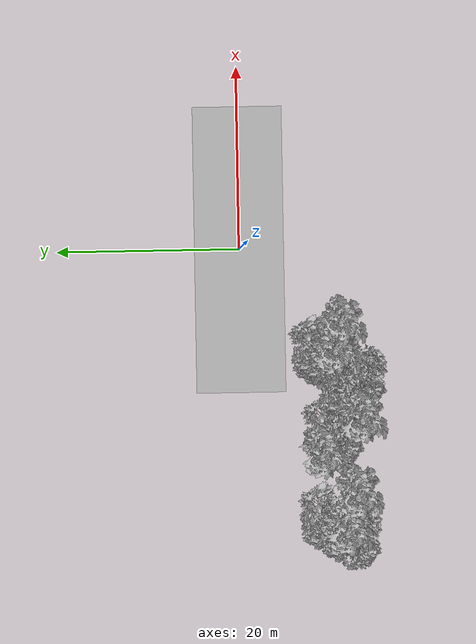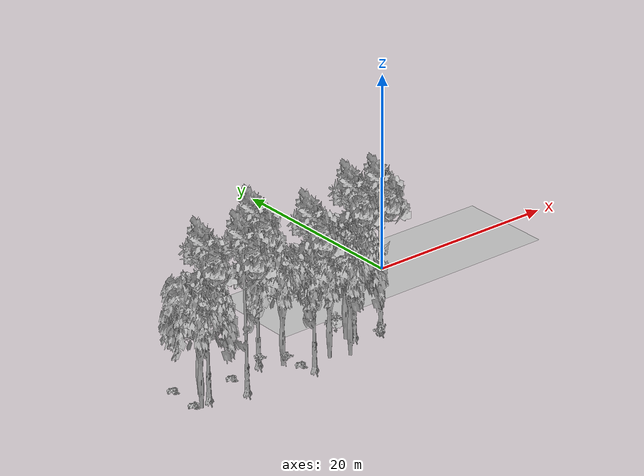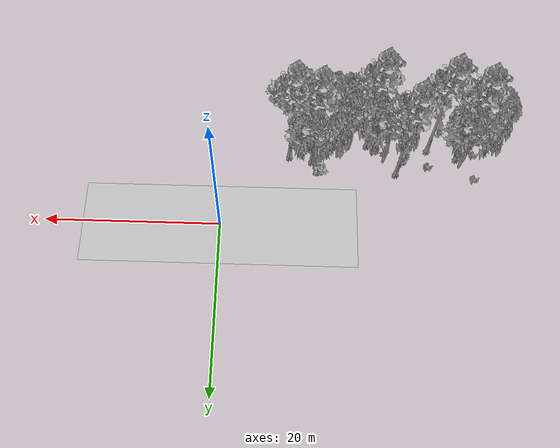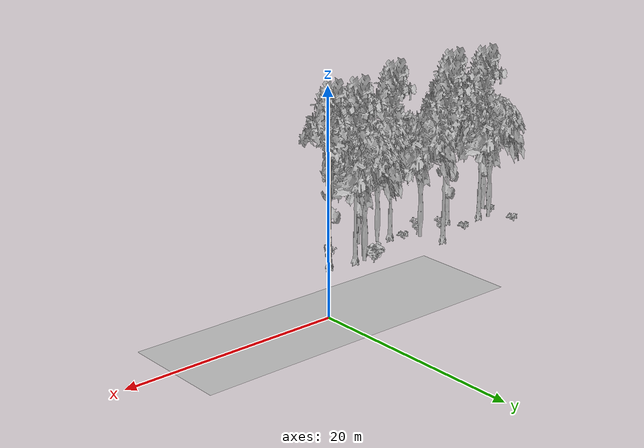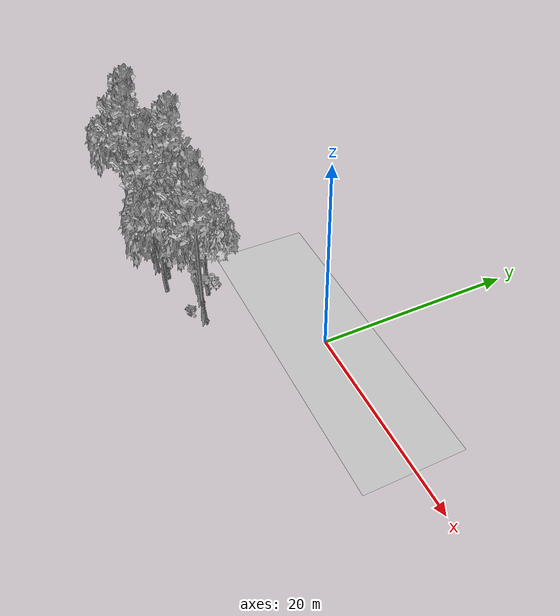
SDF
<sdf version="1.7">
 <world name="default">
  <model name="ground_plane">
   <static>1</static>
   <link name="link">
    <collision name="collision">
     <geometry><plane><normal>0 0 1</normal><size>100 100</size></plane></geometry>
     <surface><contact><ode><min_depth>0.01</min_depth><max_vel>0</max_vel></ode></contact></surface>
    </collision>
    <visual name="grass">
     <cast_shadows>0</cast_shadows>
     <geometry>
      <mesh>
       <scale>0.5814285714285714 0.18142857142857144 0.1</scale>
       <uri>file://grass_plane/meshes/grass_plane.dae</uri>
      </mesh>
     </geometry>
    </visual>
   </link>
  </model>
  <model name="Tree 18">
   <static>1</static>
   <pose>-20.40445769906592 -7.195301305459899 0 1.57079 -0 0</pose>
   <link name="link">
    <collision name="collision">
     <geometry><mesh><scale>3.5 5 3.5</scale><uri>model://tree_9/meshes/tree_9.obj</uri></mesh></geometry>
    </collision>
    <visual name="visual">
     <geometry><mesh><scale>3.5 5 3.5</scale><uri>model://tree_9/meshes/tree_9.obj</uri></mesh></geometry>
    </visual>
   </link>
  </model>
  <model name="Tree 27">
   <static>1</static>
   <pose>-10.889017046997004 -7.6712692974383065 0 1.57079 -0 0</pose>
   <link name="link">
    <collision name="collision">
     <geometry><mesh><scale>3.5 5 3.5</scale><uri>model://tree_2/meshes/tree_2.obj</uri></mesh></geometry>
    </collision>
    <visual name="visual">
     <geometry><mesh><scale>3.5 5 3.5</scale><uri>model://tree_2/meshes/tree_2.obj</uri></mesh></geometry>
    </visual>
   </link>
  </model>
  <model name="Tree 64">
   <static>1</static>
   <pose>-27.997522878768937 -8.398625686146245 0 1.57079 -0 0</pose>
   <link name="link">
    <collision name="collision">
     <geometry><mesh><scale>3.5 5 3.5</scale><uri>model://tree_2/meshes/tree_2.obj</uri></mesh></geometry>
    </collision>
    <visual name="visual">
     <geometry><mesh><scale>3.5 5 3.5</scale><uri>model://tree_2/meshes/tree_2.obj</uri></mesh></geometry>
    </visual>
   </link>
  </model>
  <model name="Tree 67">
   <static>1</static>
   <pose>-24.26446829051003 -10.529204269525131 0 1.57079 -0 0</pose>
   <link name="link">
    <collision name="collision">
     <geometry><mesh><scale>3.5 5 3.5</scale><uri>model://tree_9/meshes/tree_9.obj</uri></mesh></geometry>
    </collision>
    <visual name="visual">
     <geometry><mesh><scale>3.5 5 3.5</scale><uri>model://tree_9/meshes/tree_9.obj</uri></mesh></geometry>
    </visual>
   </link>
  </model>
  <model name="Tree 87">
   <static>1</static>
   <pose>-14.94647857060501 -10.447118888923555 0 1.57079 -0 0</pose>
   <link name="link">
    <collision name="collision">
     <geometry><mesh><scale>3.5 5 3.5</scale><uri>model://tree_2/meshes/tree_2.obj</uri></mesh></geometry>
    </collision>
    <visual name="visual">
     <geometry><mesh><scale>3.5 5 3.5</scale><uri>model://tree_2/meshes/tree_2.obj</uri></mesh></geometry>
    </visual>
   </link>
  </model>
  <model name="Tree 138">
   <static>1</static>
   <pose>-29.275993789265485 -10.40914517177292 0 1.57079 -0 0</pose>
   <link name="link">
    <collision name="collision">
     <geometry><mesh><scale>3.5 5 3.5</scale><uri>model://tree_2/meshes/tree_2.obj</uri></mesh></geometry>
    </collision>
    <visual name="visual">
     <geometry><mesh><scale>3.5 5 3.5</scale><uri>model://tree_2/meshes/tree_2.obj</uri></mesh></geometry>
    </visual>
   </link>
  </model>
  <model name="Tree 147">
   <static>1</static>
   <pose>-27.676338895596533 -9.46270204950148 0 1.57079 -0 0</pose>
   <link name="link">
    <collision name="collision">
     <geometry><mesh><scale>3.5 5 3.5</scale><uri>model://tree_9/meshes/tree_9.obj</uri></mesh></geometry>
    </collision>
    <visual name="visual">
     <geometry><mesh><scale>3.5 5 3.5</scale><uri>model://tree_9/meshes/tree_9.obj</uri></mesh></geometry>
    </visual>
   </link>
  </model>
  <model name="Tree 180">
   <static>1</static>
   <pose>-7.8509546493767886 -9.181474716428522 0 1.57079 -0 0</pose>
   <link name="link">
    <collision name="collision">
     <geometry><mesh><scale>3.5 5 3.5</scale><uri>model://tree_9/meshes/tree_9.obj</uri></mesh></geometry>
    </collision>
    <visual name="visual">
     <geometry><mesh><scale>3.5 5 3.5</scale><uri>model://tree_9/meshes/tree_9.obj</uri></mesh></geometry>
    </visual>
   </link>
  </model>
  <model name="Tree 185">
   <static>1</static>
   <pose>-19.030774615669706 -8.836474792375165 0 1.57079 -0 0</pose>
   <link name="link">
    <collision name="collision">
     <geometry><mesh><scale>3.5 5 3.5</scale><uri>model://tree_2/meshes/tree_2.obj</uri></mesh></geometry>
    </collision>
    <visual name="visual">
     <geometry><mesh><scale>3.5 5 3.5</scale><uri>model://tree_2/meshes/tree_2.obj</uri></mesh></geometry>
    </visual>
   </link>
  </model>
  <model name="Tree 234">
   <static>1</static>
   <pose>-10.490125468421148 -8.608728195229371 0 1.57079 -0 0</pose>
   <link name="link">
    <collision name="collision">
     <geometry><mesh><scale>3.5 5 3.5</scale><uri>model://tree_9/meshes/tree_9.obj</uri></mesh></geometry>
    </collision>
    <visual name="visual">
     <geometry><mesh><scale>3.5 5 3.5</scale><uri>model://tree_9/meshes/tree_9.obj</uri></mesh></geometry>
    </visual>
   </link>
  </model>
  <model name="Tree 267">
   <static>1</static>
   <pose>-17.067769270930466 -11.034195164932008 0 1.57079 -0 0</pose>
   <link name="link">
    <collision name="collision">
     <geometry><mesh><scale>3.5 5 3.5</scale><uri>model://tree_9/meshes/tree_9.obj</uri></mesh></geometry>
    </collision>
    <visual name="visual">
     <geometry><mesh><scale>3.5 5 3.5</scale><uri>model://tree_9/meshes/tree_9.obj</uri></mesh></geometry>
    </visual>
   </link>
  </model>
  <model name="Tree 350">
   <static>1</static>
   <pose>-13.183444713418055 -11.21582559765998 0 1.57079 -0 0</pose>
   <link name="link">
    <collision name="collision">
     <geometry><mesh><scale>3.5 5 3.5</scale><uri>model://tree_2/meshes/tree_2.obj</uri></mesh></geometry>
    </collision>
    <visual name="visual">
     <geometry><mesh><scale>3.5 5 3.5</scale><uri>model://tree_2/meshes/tree_2.obj</uri></mesh></geometry>
    </visual>
   </link>
  </model>
  <model name="Tree 395">
   <static>1</static>
   <pose>-11.552564708664818 -8.558734648526269 0 1.57079 -0 0</pose>
   <link name="link">
    <collision name="collision">
     <geometry><mesh><scale>3.5 5 3.5</scale><uri>model://tree_2/meshes/tree_2.obj</uri></mesh></geometry>
    </collision>
    <visual name="visual">
     <geometry><mesh><scale>3.5 5 3.5</scale><uri>model://tree_2/meshes/tree_2.obj</uri></mesh></geometry>
    </visual>
   </link>
  </model>
  <model name="Bush 24">
   <static>1</static>
   <pose>-24.22585604842622 -8.187470599091872 0 1.57079 -0 0</pose>
   <link name="link">
    <collision name="collision">
     <geometry><mesh><scale>2 2 2</scale><uri>model://bush_2/meshes/bush_2.obj</uri></mesh></geometry>
     <surface><contact><collide_without_contact>false</collide_without_contact></contact></surface>
    </collision>
    <visual name="visual">
     <geometry><mesh><scale>2 2 2</scale><uri>model://bush_2/meshes/bush_2.obj</uri></mesh></geometry>
    </visual>
   </link>
  </model>
  <model name="Bush 124">
   <static>1</static>
   <pose>-11.068238863076047 -6.666013742608266 0 1.57079 -0 0</pose>
   <link name="link">
    <collision name="collision">
     <geometry><mesh><scale>2 2 2</scale><uri>model://bush_0/meshes/bush_0.obj</uri></mesh></geometry>
     <surface><contact><collide_without_contact>false</collide_without_contact></contact></surface>
    </collision>
    <visual name="visual">
     <geometry><mesh><scale>2 2 2</scale><uri>model://bush_0/meshes/bush_0.obj</uri></mesh></geometry>
    </visual>
   </link>
  </model>
  <model name="Bush 128">
   <static>1</static>
   <pose>-29.56495636056592 -6.677621549137097 0 1.57079 -0 0</pose>
   <link name="link">
    <collision name="collision">
     <geometry><mesh><scale>2 2 2</scale><uri>model://bush_2/meshes/bush_2.obj</uri></mesh></geometry>
     <surface><contact><collide_without_contact>false</collide_without_contact></contact></surface>
    </collision>
    <visual name="visual">
     <geometry><mesh><scale>2 2 2</scale><uri>model://bush_2/meshes/bush_2.obj</uri></mesh></geometry>
    </visual>
   </link>
  </model>
  <model name="Bush 144">
   <static>1</static>
   <pose>-18.94604900550203 -9.291806037884935 0 1.57079 -0 0</pose>
   <link name="link">
    <collision name="collision">
     <geometry><mesh><scale>2 2 2</scale><uri>model://bush_5/meshes/bush_5.obj</uri></mesh></geometry>
     <surface><contact><collide_without_contact>false</collide_without_contact></contact></surface>
    </collision>
    <visual name="visual">
     <geometry><mesh><scale>2 2 2</scale><uri>model://bush_5/meshes/bush_5.obj</uri></mesh></geometry>
    </visual>
   </link>
  </model>
  <model name="Bush 151">
   <static>1</static>
   <pose>-17.941449596286507 -10.14795491601916 0 1.57079 -0 0</pose>
   <link name="link">
    <collision name="collision">
     <geometry><mesh><scale>2 2 2</scale><uri>model://bush_2/meshes/bush_2.obj</uri></mesh></geometry>
     <surface><contact><collide_without_contact>false</collide_without_contact></contact></surface>
    </collision>
    <visual name="visual">
     <geometry><mesh><scale>2 2 2</scale><uri>model://bush_2/meshes/bush_2.obj</uri></mesh></geometry>
    </visual>
   </link>
  </model>
  <model name="Bush 257">
   <static>1</static>
   <pose>-20.942493183732292 -7.967800419979572 0 1.57079 -0 0</pose>
   <link name="link">
    <collision name="collision">
     <geometry><mesh><scale>2 2 2</scale><uri>model://bush_5/meshes/bush_5.obj</uri></mesh></geometry>
     <surface><contact><collide_without_contact>false</collide_without_contact></contact></surface>
    </collision>
    <visual name="visual">
     <geometry><mesh><scale>2 2 2</scale><uri>model://bush_5/meshes/bush_5.obj</uri></mesh></geometry>
    </visual>
   </link>
  </model>
  <model name="Bush 263">
   <static>1</static>
   <pose>-8.74387054953985 -10.264871798832267 0 1.57079 -0 0</pose>
   <link name="link">
    <collision name="collision">
     <geometry><mesh><scale>2 2 2</scale><uri>model://bush_4/meshes/bush_4.obj</uri></mesh></geometry>
     <surface><contact><collide_without_contact>false</collide_without_contact></contact></surface>
    </collision>
    <visual name="visual">
     <geometry><mesh><scale>2 2 2</scale><uri>model://bush_4/meshes/bush_4.obj</uri></mesh></geometry>
    </visual>
   </link>
  </model>
  <model name="Bush 278">
   <static>1</static>
   <pose>-11.427209757172925 -7.106870241284118 0 1.57079 -0 0</pose>
   <link name="link">
    <collision name="collision">
     <geometry><mesh><scale>2 2 2</scale><uri>model://bush_1/meshes/bush_1.obj</uri></mesh></geometry>
     <surface><contact><collide_without_contact>false</collide_without_contact></contact></surface>
    </collision>
    <visual name="visual">
     <geometry><mesh><scale>2 2 2</scale><uri>model://bush_1/meshes/bush_1.obj</uri></mesh></geometry>
    </visual>
   </link>
  </model>
  <model name="Bush 328">
   <static>1</static>
   <pose>-29.732875108181105 -9.963332864613111 0 1.57079 -0 0</pose>
   <link name="link">
    <collision name="collision">
     <geometry><mesh><scale>2 2 2</scale><uri>model://bush_2/meshes/bush_2.obj</uri></mesh></geometry>
     <surface><contact><collide_without_contact>false</collide_without_contact></contact></surface>
    </collision>
    <visual name="visual">
     <geometry><mesh><scale>2 2 2</scale><uri>model://bush_2/meshes/bush_2.obj</uri></mesh></geometry>
    </visual>
   </link>
  </model>
 </world>
</sdf>
